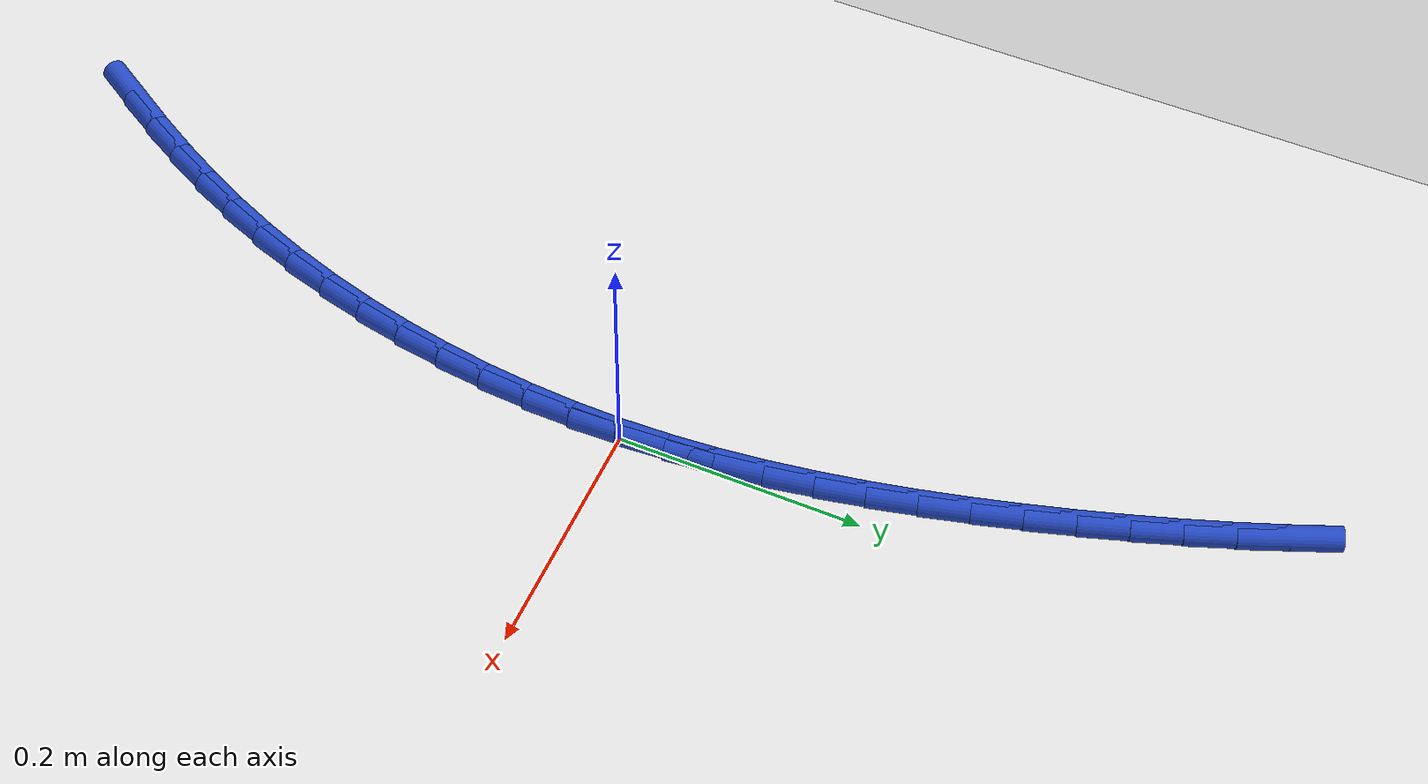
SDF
<sdf version="1.6">
 <world name="default">
  <model name="ground_plane">
   <static>1</static>
   <link name="link">
    <collision name="collision">
     <geometry><plane><normal>0 0 1</normal><size>100 100</size></plane></geometry>
     <surface><friction><ode><mu>100</mu><mu2>50</mu2></ode></friction></surface>
    </collision>
    <visual name="visual">
     <cast_shadows>0</cast_shadows>
     <geometry><plane><normal>0 0 1</normal><size>100 100</size></plane></geometry>
     <material>
      <script><uri>file://media/materials/scripts/gazebo.material</uri><name>Gazebo/WhiteGlow</name></script>
     </material>
    </visual>
   </link>
  </model>
  <model name="line">
   <link name="link_0">
    <pose>-1.734723475976807e-18 6.938893903907228e-17 0.01 0 1.57 -1.5323101199211955</pose>
    <collision name="collision">
     <geometry><cylinder><radius>0.01</radius><length>0.08</length></cylinder></geometry>
    </collision>
    <visual name="visual">
     <material>
      <script><name>Gazebo/Blue</name><uri>file://media/materials/scripts/gazebo.material</uri></script>
     </material>
     <geometry><cylinder><radius>0.01</radius><length>0.08</length></cylinder></geometry>
    </visual>
   </link>
   <link name="link_1">
    <pose>-0.0015213970700239878 0.03951144996980983 0.01 0 1.57 -1.4903846976109987</pose>
    <collision name="collision">
     <geometry><cylinder><radius>0.01</radius><length>0.08</length></cylinder></geometry>
    </collision>
    <visual name="visual">
     <material>
      <script><name>Gazebo/Blue</name><uri>file://media/materials/scripts/gazebo.material</uri></script>
     </material>
     <geometry><cylinder><radius>0.01</radius><length>0.08</length></cylinder></geometry>
    </visual>
   </link>
   <link name="link_2">
    <pose>-0.00469291365753506 0.0788674232774882 0.01 0 1.57 -1.4515477809907944</pose>
    <collision name="collision">
     <geometry><cylinder><radius>0.01</radius><length>0.08</length></cylinder></geometry>
    </collision>
    <visual name="visual">
     <material>
      <script><name>Gazebo/Blue</name><uri>file://media/materials/scripts/gazebo.material</uri></script>
     </material>
     <geometry><cylinder><radius>0.01</radius><length>0.08</length></cylinder></geometry>
    </visual>
   </link>
   <link name="link_3">
    <pose>-0.009388990292405204 0.11806115709889219 0.01 0 1.57 -1.4158630483861034</pose>
    <collision name="collision">
     <geometry><cylinder><radius>0.01</radius><length>0.08</length></cylinder></geometry>
    </collision>
    <visual name="visual">
     <material>
      <script><name>Gazebo/Blue</name><uri>file://media/materials/scripts/gazebo.material</uri></script>
     </material>
     <geometry><cylinder><radius>0.01</radius><length>0.08</length></cylinder></geometry>
    </visual>
   </link>
   <link name="link_4">
    <pose>-0.015484067504506416 0.15708588860987882 0.01 0 1.57 -1.3833520352962583</pose>
    <collision name="collision">
     <geometry><cylinder><radius>0.01</radius><length>0.08</length></cylinder></geometry>
    </collision>
    <visual name="visual">
     <material>
      <script><name>Gazebo/Blue</name><uri>file://media/materials/scripts/gazebo.material</uri></script>
     </material>
     <geometry><cylinder><radius>0.01</radius><length>0.08</length></cylinder></geometry>
    </visual>
   </link>
   <link name="link_5">
    <pose>-0.02285258582371067 0.19593485498630508 0.01 0 1.57 -1.354004692443112</pose>
    <collision name="collision">
     <geometry><cylinder><radius>0.01</radius><length>0.08</length></cylinder></geometry>
    </collision>
    <visual name="visual">
     <material>
      <script><name>Gazebo/Blue</name><uri>file://media/materials/scripts/gazebo.material</uri></script>
     </material>
     <geometry><cylinder><radius>0.01</radius><length>0.08</length></cylinder></geometry>
    </visual>
   </link>
   <link name="link_6">
    <pose>-0.031368985779889946 0.2346012934040279 0.01 0 1.57 -1.327789300398814</pose>
    <collision name="collision">
     <geometry><cylinder><radius>0.01</radius><length>0.08</length></cylinder></geometry>
    </collision>
    <visual name="visual">
     <material>
      <script><name>Gazebo/Blue</name><uri>file://media/materials/scripts/gazebo.material</uri></script>
     </material>
     <geometry><cylinder><radius>0.01</radius><length>0.08</length></cylinder></geometry>
    </visual>
   </link>
   <link name="link_7">
    <pose>-0.040907707902916264 0.27307844103890444 0.01 0 1.57 -1.3046613184112068</pose>
    <collision name="collision">
     <geometry><cylinder><radius>0.01</radius><length>0.08</length></cylinder></geometry>
    </collision>
    <visual name="visual">
     <material>
      <script><name>Gazebo/Blue</name><uri>file://media/materials/scripts/gazebo.material</uri></script>
     </material>
     <geometry><cylinder><radius>0.01</radius><length>0.08</length></cylinder></geometry>
    </visual>
   </link>
   <link name="link_8">
    <pose>-0.05134319272266158 0.31135953506679165 0.01 0 1.57 -1.2845657536202524</pose>
    <collision name="collision">
     <geometry><cylinder><radius>0.01</radius><length>0.08</length></cylinder></geometry>
    </collision>
    <visual name="visual">
     <material>
      <script><name>Gazebo/Blue</name><uri>file://media/materials/scripts/gazebo.material</uri></script>
     </material>
     <geometry><cylinder><radius>0.01</radius><length>0.08</length></cylinder></geometry>
    </visual>
   </link>
   <link name="link_9">
    <pose>-0.06255008660807339 0.3494377753334058 0.01 0 1.57 -1.2662746298518537</pose>
    <collision name="collision">
     <geometry><cylinder><radius>0.01</radius><length>0.08</length></cylinder></geometry>
    </collision>
    <visual name="visual">
     <material>
      <script><name>Gazebo/Blue</name><uri>file://media/materials/scripts/gazebo.material</uri></script>
     </material>
     <geometry><cylinder><radius>0.01</radius><length>0.08</length></cylinder></geometry>
    </visual>
   </link>
   <link name="link_10">
    <pose>-0.0744494468587785 0.38729794478611923 0.01 0 1.57 -1.247087587731008</pose>
    <collision name="collision">
     <geometry><cylinder><radius>0.01</radius><length>0.08</length></cylinder></geometry>
    </collision>
    <visual name="visual">
     <material>
      <script><name>Gazebo/Blue</name><uri>file://media/materials/scripts/gazebo.material</uri></script>
     </material>
     <geometry><cylinder><radius>0.01</radius><length>0.08</length></cylinder></geometry>
    </visual>
   </link>
   <link name="link_11">
    <pose>-0.08706727581632619 0.42490579396470984 0.01 0 1.57 -1.22661730961343</pose>
    <collision name="collision">
     <geometry><cylinder><radius>0.01</radius><length>0.08</length></cylinder></geometry>
    </collision>
    <visual name="visual">
     <material>
      <script><name>Gazebo/Blue</name><uri>file://media/materials/scripts/gazebo.material</uri></script>
     </material>
     <geometry><cylinder><radius>0.01</radius><length>0.08</length></cylinder></geometry>
    </visual>
   </link>
   <link name="link_12">
    <pose>-0.10044399449879922 0.46222445849619886 0.01 0 1.57 -1.204845244103253</pose>
    <collision name="collision">
     <geometry><cylinder><radius>0.01</radius><length>0.08</length></cylinder></geometry>
    </collision>
    <visual name="visual">
     <material>
      <script><name>Gazebo/Blue</name><uri>file://media/materials/scripts/gazebo.material</uri></script>
     </material>
     <geometry><cylinder><radius>0.01</radius><length>0.08</length></cylinder></geometry>
    </visual>
   </link>
   <link name="link_13">
    <pose>-0.11462002392428056 0.4992170740076088 0.01 0 1.57 -1.1817555785301266</pose>
    <collision name="collision">
     <geometry><cylinder><radius>0.01</radius><length>0.08</length></cylinder></geometry>
    </collision>
    <visual name="visual">
     <material>
      <script><name>Gazebo/Blue</name><uri>file://media/materials/scripts/gazebo.material</uri></script>
     </material>
     <geometry><cylinder><radius>0.01</radius><length>0.08</length></cylinder></geometry>
    </visual>
   </link>
   <link name="link_166">
    <pose>-0.15216796959479958 -0.5236672470685204 0.01 0 1.57 1.0285972059658435</pose>
    <collision name="collision">
     <geometry><cylinder><radius>0.01</radius><length>0.08</length></cylinder></geometry>
    </collision>
    <visual name="visual">
     <material>
      <script><name>Gazebo/Blue</name><uri>file://media/materials/scripts/gazebo.material</uri></script>
     </material>
     <geometry><cylinder><radius>0.01</radius><length>0.08</length></cylinder></geometry>
    </visual>
   </link>
   <link name="link_167">
    <pose>-0.13181674983209304 -0.4898849644648249 0.01 0 1.57 1.060549309249456</pose>
    <collision name="collision">
     <geometry><cylinder><radius>0.01</radius><length>0.08</length></cylinder></geometry>
    </collision>
    <visual name="visual">
     <material>
      <script><name>Gazebo/Blue</name><uri>file://media/materials/scripts/gazebo.material</uri></script>
     </material>
     <geometry><cylinder><radius>0.01</radius><length>0.08</length></cylinder></geometry>
    </visual>
   </link>
   <link name="link_168">
    <pose>-0.11263965112382542 -0.45562075335350577 0.01 0 1.57 1.0957476993408097</pose>
    <collision name="collision">
     <geometry><cylinder><radius>0.01</radius><length>0.08</length></cylinder></geometry>
    </collision>
    <visual name="visual">
     <material>
      <script><name>Gazebo/Blue</name><uri>file://media/materials/scripts/gazebo.material</uri></script>
     </material>
     <geometry><cylinder><radius>0.01</radius><length>0.08</length></cylinder></geometry>
    </visual>
   </link>
   <link name="link_169">
    <pose>-0.0947291666618515 -0.4207980539241274 0.01 0 1.57 1.1340666198130191</pose>
    <collision name="collision">
     <geometry><cylinder><radius>0.01</radius><length>0.08</length></cylinder></geometry>
    </collision>
    <visual name="visual">
     <material>
      <script><name>Gazebo/Blue</name><uri>file://media/materials/scripts/gazebo.material</uri></script>
     </material>
     <geometry><cylinder><radius>0.01</radius><length>0.08</length></cylinder></geometry>
    </visual>
   </link>
   <link name="link_170">
    <pose>-0.07817778963802573 -0.3853403063662534 0.01 0 1.57 1.175317242899096</pose>
    <collision name="collision">
     <geometry><cylinder><radius>0.01</radius><length>0.08</length></cylinder></geometry>
    </collision>
    <visual name="visual">
     <material>
      <script><name>Gazebo/Blue</name><uri>file://media/materials/scripts/gazebo.material</uri></script>
     </material>
     <geometry><cylinder><radius>0.01</radius><length>0.08</length></cylinder></geometry>
    </visual>
   </link>
   <link name="link_171">
    <pose>-0.06307801324420359 -0.34917095086944944 0.01 0 1.57 1.218960236944385</pose>
    <collision name="collision">
     <geometry><cylinder><radius>0.01</radius><length>0.08</length></cylinder></geometry>
    </collision>
    <visual name="visual">
     <material>
      <script><name>Gazebo/Blue</name><uri>file://media/materials/scripts/gazebo.material</uri></script>
     </material>
     <geometry><cylinder><radius>0.01</radius><length>0.08</length></cylinder></geometry>
    </visual>
   </link>
   <link name="link_172">
    <pose>-0.049516402526735226 -0.31222946928511 0.01 0 1.57 1.26278845518208</pose>
    <collision name="collision">
     <geometry><cylinder><radius>0.01</radius><length>0.08</length></cylinder></geometry>
    </collision>
    <visual name="visual">
     <material>
      <script><name>Gazebo/Blue</name><uri>file://media/materials/scripts/gazebo.material</uri></script>
     </material>
     <geometry><cylinder><radius>0.01</radius><length>0.08</length></cylinder></geometry>
    </visual>
   </link>
   <link name="link_173">
    <pose>-0.03753637505744324 -0.2745721012592458 0.01 0 1.57 1.3060506629944835</pose>
    <collision name="collision">
     <geometry><cylinder><radius>0.01</radius><length>0.08</length></cylinder></geometry>
    </collision>
    <visual name="visual">
     <material>
      <script><name>Gazebo/Blue</name><uri>file://media/materials/scripts/gazebo.material</uri></script>
     </material>
     <geometry><cylinder><radius>0.01</radius><length>0.08</length></cylinder></geometry>
    </visual>
   </link>
   <link name="link_174">
    <pose>-0.027162266854485254 -0.23630672144427664 0.01 0 1.57 1.3489479701091385</pose>
    <collision name="collision">
     <geometry><cylinder><radius>0.01</radius><length>0.08</length></cylinder></geometry>
    </collision>
    <visual name="visual">
     <material>
      <script><name>Gazebo/Blue</name><uri>file://media/materials/scripts/gazebo.material</uri></script>
     </material>
     <geometry><cylinder><radius>0.01</radius><length>0.08</length></cylinder></geometry>
    </visual>
   </link>
   <link name="link_175">
    <pose>-0.01841832930661571 -0.1975414335012156 0.01 0 1.57 1.3916834630916244</pose>
    <collision name="collision">
     <geometry><cylinder><radius>0.01</radius><length>0.08</length></cylinder></geometry>
    </collision>
    <visual name="visual">
     <material>
      <script><name>Gazebo/Blue</name><uri>file://media/materials/scripts/gazebo.material</uri></script>
     </material>
     <geometry><cylinder><radius>0.01</radius><length>0.08</length></cylinder></geometry>
    </visual>
   </link>
   <link name="link_176">
    <pose>-0.01132881380258891 -0.15838434109107527 0.01 0 1.57 1.4344584289885087</pose>
    <collision name="collision">
     <geometry><cylinder><radius>0.01</radius><length>0.08</length></cylinder></geometry>
    </collision>
    <visual name="visual">
     <material>
      <script><name>Gazebo/Blue</name><uri>file://media/materials/scripts/gazebo.material</uri></script>
     </material>
     <geometry><cylinder><radius>0.01</radius><length>0.08</length></cylinder></geometry>
    </visual>
   </link>
   <link name="link_177">
    <pose>-0.005917971731159596 -0.11894354787487066 0.01 0 1.57 1.4774726670725538</pose>
    <collision name="collision">
     <geometry><cylinder><radius>0.01</radius><length>0.08</length></cylinder></geometry>
    </collision>
    <visual name="visual">
     <material>
      <script><name>Gazebo/Blue</name><uri>file://media/materials/scripts/gazebo.material</uri></script>
     </material>
     <geometry><cylinder><radius>0.01</radius><length>0.08</length></cylinder></geometry>
    </visual>
   </link>
   <link name="link_178">
    <pose>-0.002210054481082048 -0.07932715751361434 0.01 0 1.57 1.5209247309410086</pose>
    <collision name="collision">
     <geometry><cylinder><radius>0.01</radius><length>0.08</length></cylinder></geometry>
    </collision>
    <visual name="visual">
     <material>
      <script><name>Gazebo/Blue</name><uri>file://media/materials/scripts/gazebo.material</uri></script>
     </material>
     <geometry><cylinder><radius>0.01</radius><length>0.08</length></cylinder></geometry>
    </visual>
   </link>
   <link name="link_179">
    <pose>-0.000229313441110701 -0.03964327366831971 0.01 0 1.57 1.5650119688857516</pose>
    <collision name="collision">
     <geometry><cylinder><radius>0.01</radius><length>0.08</length></cylinder></geometry>
    </collision>
    <visual name="visual">
     <material>
      <script><name>Gazebo/Blue</name><uri>file://media/materials/scripts/gazebo.material</uri></script>
     </material>
     <geometry><cylinder><radius>0.01</radius><length>0.08</length></cylinder></geometry>
    </visual>
   </link>
   <link name="link_180">
    <pose>-1.734723475976807e-18 -9.020562075079397e-17 0.01 0 1.57 -1.5316624290495653</pose>
    <collision name="collision">
     <geometry><cylinder><radius>0.01</radius><length>0.08</length></cylinder></geometry>
    </collision>
    <visual name="visual">
     <material>
      <script><name>Gazebo/Blue</name><uri>file://media/materials/scripts/gazebo.material</uri></script>
     </material>
     <geometry><cylinder><radius>0.01</radius><length>0.08</length></cylinder></geometry>
    </visual>
   </link>
   <link name="link_181">
    <pose>-0.0015463655465043809 0.03949455983033111 0.01 0 1.57 -1.531662429049565</pose>
    <collision name="collision">
     <geometry><cylinder><radius>0.01</radius><length>0.08</length></cylinder></geometry>
    </collision>
    <visual name="visual">
     <material>
      <script><name>Gazebo/Blue</name><uri>file://media/materials/scripts/gazebo.material</uri></script>
     </material>
     <geometry><cylinder><radius>0.01</radius><length>0.08</length></cylinder></geometry>
    </visual>
   </link>
  </model>
 </world>
</sdf>
